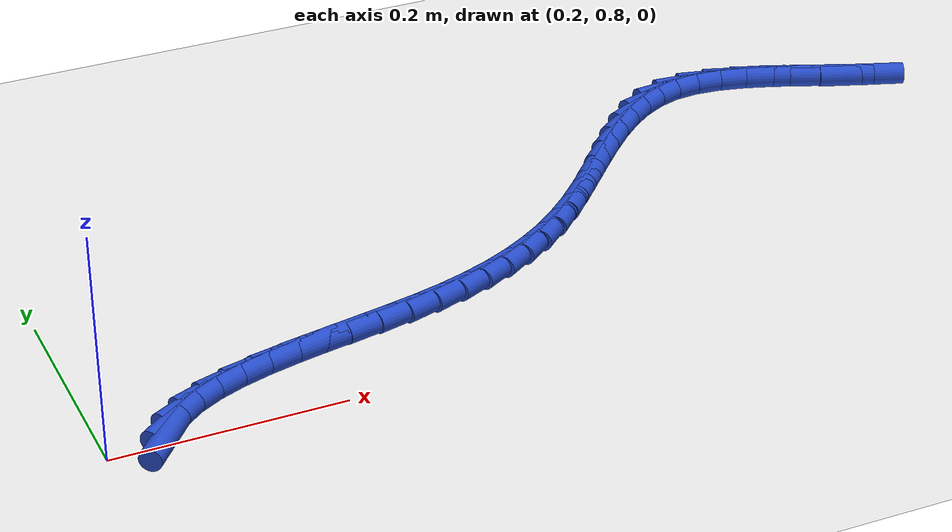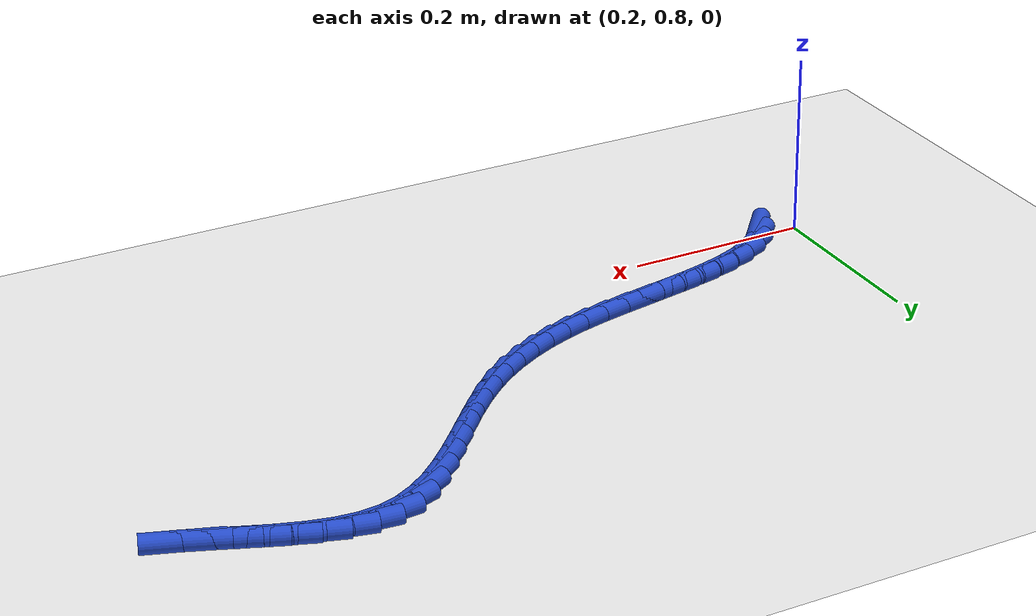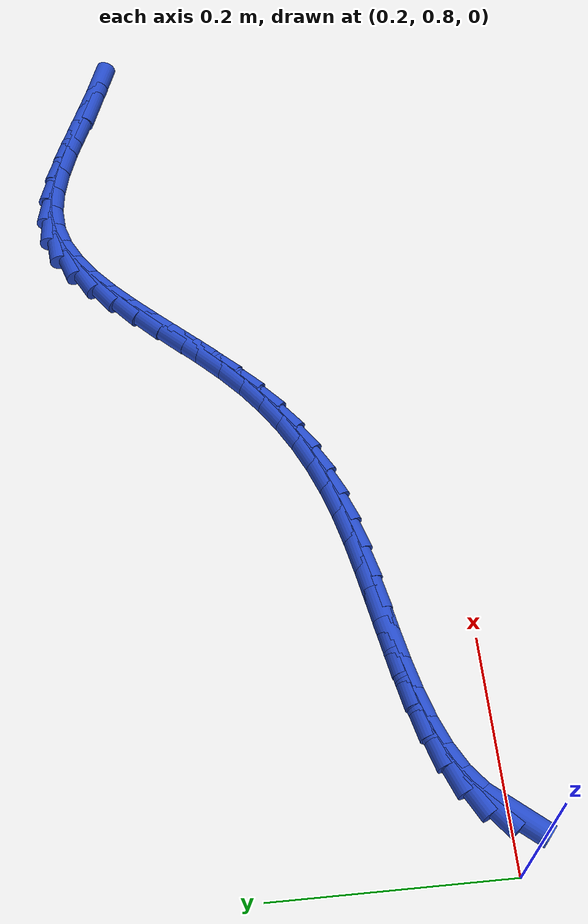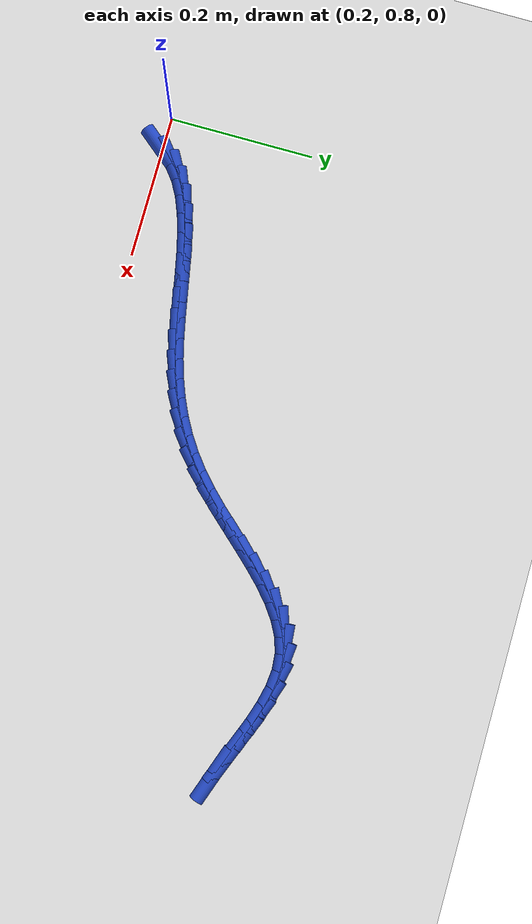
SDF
<sdf version="1.6">
 <world name="default">
  <model name="ground_plane">
   <static>1</static>
   <link name="link">
    <collision name="collision">
     <geometry><plane><normal>0 0 1</normal><size>100 100</size></plane></geometry>
     <surface><friction><ode><mu>100</mu><mu2>50</mu2></ode></friction></surface>
    </collision>
    <visual name="visual">
     <cast_shadows>0</cast_shadows>
     <geometry><plane><normal>0 0 1</normal><size>100 100</size></plane></geometry>
     <material>
      <script><uri>file://media/materials/scripts/gazebo.material</uri><name>Gazebo/WhiteGlow</name></script>
     </material>
    </visual>
   </link>
  </model>
  <model name="line">
   <link name="link_33">
    <pose>0.25196039313843843 0.8035025641075734 0.01 0 1.57 0.8814031383299049</pose>
    <collision name="collision">
     <geometry><cylinder><radius>0.01</radius><length>0.08</length></cylinder></geometry>
    </collision>
    <visual name="visual">
     <material>
      <script><name>Gazebo/Blue</name><uri>file://media/materials/scripts/gazebo.material</uri></script>
     </material>
     <geometry><cylinder><radius>0.01</radius><length>0.08</length></cylinder></geometry>
    </visual>
   </link>
   <link name="link_34">
    <pose>0.2656116137168598 0.8200632192654634 0.01 0 1.57 0.6683258235549239</pose>
    <collision name="collision">
     <geometry><cylinder><radius>0.01</radius><length>0.08</length></cylinder></geometry>
    </collision>
    <visual name="visual">
     <material>
      <script><name>Gazebo/Blue</name><uri>file://media/materials/scripts/gazebo.material</uri></script>
     </material>
     <geometry><cylinder><radius>0.01</radius><length>0.08</length></cylinder></geometry>
    </visual>
   </link>
   <link name="link_35">
    <pose>0.2830352882135735 0.8338197814384 0.01 0 1.57 0.5024953430491619</pose>
    <collision name="collision">
     <geometry><cylinder><radius>0.01</radius><length>0.08</length></cylinder></geometry>
    </collision>
    <visual name="visual">
     <material>
      <script><name>Gazebo/Blue</name><uri>file://media/materials/scripts/gazebo.material</uri></script>
     </material>
     <geometry><cylinder><radius>0.01</radius><length>0.08</length></cylinder></geometry>
    </visual>
   </link>
   <link name="link_36">
    <pose>0.30370620266704607 0.8451794202308732 0.01 0 1.57 0.38110081155639564</pose>
    <collision name="collision">
     <geometry><cylinder><radius>0.01</radius><length>0.08</length></cylinder></geometry>
    </collision>
    <visual name="visual">
     <material>
      <script><name>Gazebo/Blue</name><uri>file://media/materials/scripts/gazebo.material</uri></script>
     </material>
     <geometry><cylinder><radius>0.01</radius><length>0.08</length></cylinder></geometry>
    </visual>
   </link>
   <link name="link_37">
    <pose>0.3270960411494506 0.8545514877832754 0.01 0 1.57 0.29574475086381513</pose>
    <collision name="collision">
     <geometry><cylinder><radius>0.01</radius><length>0.08</length></cylinder></geometry>
    </collision>
    <visual name="visual">
     <material>
      <script><name>Gazebo/Blue</name><uri>file://media/materials/scripts/gazebo.material</uri></script>
     </material>
     <geometry><cylinder><radius>0.01</radius><length>0.08</length></cylinder></geometry>
    </visual>
   </link>
   <link name="link_38">
    <pose>0.3526764877329599 0.8623453362359983 0.01 0 1.57 0.2385528095769914</pose>
    <collision name="collision">
     <geometry><cylinder><radius>0.01</radius><length>0.08</length></cylinder></geometry>
    </collision>
    <visual name="visual">
     <material>
      <script><name>Gazebo/Blue</name><uri>file://media/materials/scripts/gazebo.material</uri></script>
     </material>
     <geometry><cylinder><radius>0.01</radius><length>0.08</length></cylinder></geometry>
    </visual>
   </link>
   <link name="link_39">
    <pose>0.37991922648974713 0.868970317729434 0.01 0 1.57 0.2038294780840506</pose>
    <collision name="collision">
     <geometry><cylinder><radius>0.01</radius><length>0.08</length></cylinder></geometry>
    </collision>
    <visual name="visual">
     <material>
      <script><name>Gazebo/Blue</name><uri>file://media/materials/scripts/gazebo.material</uri></script>
     </material>
     <geometry><cylinder><radius>0.01</radius><length>0.08</length></cylinder></geometry>
    </visual>
   </link>
   <link name="link_40">
    <pose>0.4082959414919849 0.8748357844039745 0.01 0 1.57 0.18805007849693478</pose>
    <collision name="collision">
     <geometry><cylinder><radius>0.01</radius><length>0.08</length></cylinder></geometry>
    </collision>
    <visual name="visual">
     <material>
      <script><name>Gazebo/Blue</name><uri>file://media/materials/scripts/gazebo.material</uri></script>
     </material>
     <geometry><cylinder><radius>0.01</radius><length>0.08</length></cylinder></geometry>
    </visual>
   </link>
   <link name="link_41">
    <pose>0.4372783168118466 0.8803510884000115 0.01 0 1.57 0.18952650978616276</pose>
    <collision name="collision">
     <geometry><cylinder><radius>0.01</radius><length>0.08</length></cylinder></geometry>
    </collision>
    <visual name="visual">
     <material>
      <script><name>Gazebo/Blue</name><uri>file://media/materials/scripts/gazebo.material</uri></script>
     </material>
     <geometry><cylinder><radius>0.01</radius><length>0.08</length></cylinder></geometry>
    </visual>
   </link>
   <link name="link_42">
    <pose>0.4663380365215052 0.8859255818579378 0.01 0 1.57 0.20817025769582292</pose>
    <collision name="collision">
     <geometry><cylinder><radius>0.01</radius><length>0.08</length></cylinder></geometry>
    </collision>
    <visual name="visual">
     <material>
      <script><name>Gazebo/Blue</name><uri>file://media/materials/scripts/gazebo.material</uri></script>
     </material>
     <geometry><cylinder><radius>0.01</radius><length>0.08</length></cylinder></geometry>
    </visual>
   </link>
   <link name="link_43">
    <pose>0.49494678469313347 0.8919686169181444 0.01 0 1.57 0.24544051459341526</pose>
    <collision name="collision">
     <geometry><cylinder><radius>0.01</radius><length>0.08</length></cylinder></geometry>
    </collision>
    <visual name="visual">
     <material>
      <script><name>Gazebo/Blue</name><uri>file://media/materials/scripts/gazebo.material</uri></script>
     </material>
     <geometry><cylinder><radius>0.01</radius><length>0.08</length></cylinder></geometry>
    </visual>
   </link>
   <link name="link_44">
    <pose>0.5225762509966341 0.8988895433145175 0.01 0 1.57 0.30126496781764067</pose>
    <collision name="collision">
     <geometry><cylinder><radius>0.01</radius><length>0.08</length></cylinder></geometry>
    </collision>
    <visual name="visual">
     <material>
      <script><name>Gazebo/Blue</name><uri>file://media/materials/scripts/gazebo.material</uri></script>
     </material>
     <geometry><cylinder><radius>0.01</radius><length>0.08</length></cylinder></geometry>
    </visual>
   </link>
   <link name="link_45">
    <pose>0.5488216759274406 0.9070445953444581 0.01 0 1.57 0.36642740367754484</pose>
    <collision name="collision">
     <geometry><cylinder><radius>0.01</radius><length>0.08</length></cylinder></geometry>
    </collision>
    <visual name="visual">
     <material>
      <script><name>Gazebo/Blue</name><uri>file://media/materials/scripts/gazebo.material</uri></script>
     </material>
     <geometry><cylinder><radius>0.01</radius><length>0.08</length></cylinder></geometry>
    </visual>
   </link>
   <link name="link_46">
    <pose>0.5737207020875215 0.916599815286096 0.01 0 1.57 0.4374550515494316</pose>
    <collision name="collision">
     <geometry><cylinder><radius>0.01</radius><length>0.08</length></cylinder></geometry>
    </collision>
    <visual name="visual">
     <material>
      <script><name>Gazebo/Blue</name><uri>file://media/materials/scripts/gazebo.material</uri></script>
     </material>
     <geometry><cylinder><radius>0.01</radius><length>0.08</length></cylinder></geometry>
    </visual>
   </link>
   <link name="link_47">
    <pose>0.5974099544098117 0.9276786921631349 0.01 0 1.57 0.5125394096000014</pose>
    <collision name="collision">
     <geometry><cylinder><radius>0.01</radius><length>0.08</length></cylinder></geometry>
    </collision>
    <visual name="visual">
     <material>
      <script><name>Gazebo/Blue</name><uri>file://media/materials/scripts/gazebo.material</uri></script>
     </material>
     <geometry><cylinder><radius>0.01</radius><length>0.08</length></cylinder></geometry>
    </visual>
   </link>
   <link name="link_48">
    <pose>0.6200260578272451 0.9404047149992777 0.01 0 1.57 0.589393772578855</pose>
    <collision name="collision">
     <geometry><cylinder><radius>0.01</radius><length>0.08</length></cylinder></geometry>
    </collision>
    <visual name="visual">
     <material>
      <script><name>Gazebo/Blue</name><uri>file://media/materials/scripts/gazebo.material</uri></script>
     </material>
     <geometry><cylinder><radius>0.01</radius><length>0.08</length></cylinder></geometry>
    </visual>
   </link>
   <link name="link_49">
    <pose>0.6417056372727566 0.9549013728182282 0.01 0 1.57 0.6655343394546928</pose>
    <collision name="collision">
     <geometry><cylinder><radius>0.01</radius><length>0.08</length></cylinder></geometry>
    </collision>
    <visual name="visual">
     <material>
      <script><name>Gazebo/Blue</name><uri>file://media/materials/scripts/gazebo.material</uri></script>
     </material>
     <geometry><cylinder><radius>0.01</radius><length>0.08</length></cylinder></geometry>
    </visual>
   </link>
   <link name="link_50">
    <pose>0.66258531767928 0.9712921546436889 0.01 0 1.57 0.738272810275782</pose>
    <collision name="collision">
     <geometry><cylinder><radius>0.01</radius><length>0.08</length></cylinder></geometry>
    </collision>
    <visual name="visual">
     <material>
      <script><name>Gazebo/Blue</name><uri>file://media/materials/scripts/gazebo.material</uri></script>
     </material>
     <geometry><cylinder><radius>0.01</radius><length>0.08</length></cylinder></geometry>
    </visual>
   </link>
   <link name="link_51">
    <pose>0.6828022919840575 0.989688131755414 0.01 0 1.57 0.795839715297439</pose>
    <collision name="collision">
     <geometry><cylinder><radius>0.01</radius><length>0.08</length></cylinder></geometry>
    </collision>
    <visual name="visual">
     <material>
      <script><name>Gazebo/Blue</name><uri>file://media/materials/scripts/gazebo.material</uri></script>
     </material>
     <geometry><cylinder><radius>0.01</radius><length>0.08</length></cylinder></geometry>
    </visual>
   </link>
   <link name="link_52">
    <pose>0.702511460875961 1.00981324751435 0.01 0 1.57 0.8285183529158602</pose>
    <collision name="collision">
     <geometry><cylinder><radius>0.01</radius><length>0.08</length></cylinder></geometry>
    </collision>
    <visual name="visual">
     <material>
      <script><name>Gazebo/Blue</name><uri>file://media/materials/scripts/gazebo.material</uri></script>
     </material>
     <geometry><cylinder><radius>0.01</radius><length>0.08</length></cylinder></geometry>
    </visual>
   </link>
   <link name="link_53">
    <pose>0.7218884762774764 1.03093778057853 0.01 0 1.57 0.8382363117363955</pose>
    <collision name="collision">
     <geometry><cylinder><radius>0.01</radius><length>0.08</length></cylinder></geometry>
    </collision>
    <visual name="visual">
     <material>
      <script><name>Gazebo/Blue</name><uri>file://media/materials/scripts/gazebo.material</uri></script>
     </material>
     <geometry><cylinder><radius>0.01</radius><length>0.08</length></cylinder></geometry>
    </visual>
   </link>
   <link name="link_54">
    <pose>0.7411101716157126 1.0523061794816884 0.01 0 1.57 0.8256135696002049</pose>
    <collision name="collision">
     <geometry><cylinder><radius>0.01</radius><length>0.08</length></cylinder></geometry>
    </collision>
    <visual name="visual">
     <material>
      <script><name>Gazebo/Blue</name><uri>file://media/materials/scripts/gazebo.material</uri></script>
     </material>
     <geometry><cylinder><radius>0.01</radius><length>0.08</length></cylinder></geometry>
    </visual>
   </link>
   <link name="link_55">
    <pose>0.7603533803177783 1.0731628927575592 0.01 0 1.57 0.7891879679398328</pose>
    <collision name="collision">
     <geometry><cylinder><radius>0.01</radius><length>0.08</length></cylinder></geometry>
    </collision>
    <visual name="visual">
     <material>
      <script><name>Gazebo/Blue</name><uri>file://media/materials/scripts/gazebo.material</uri></script>
     </material>
     <geometry><cylinder><radius>0.01</radius><length>0.08</length></cylinder></geometry>
    </visual>
   </link>
   <link name="link_56">
    <pose>0.7797949358107827 1.0927523689398775 0.01 0 1.57 0.7252822954863996</pose>
    <collision name="collision">
     <geometry><cylinder><radius>0.01</radius><length>0.08</length></cylinder></geometry>
    </collision>
    <visual name="visual">
     <material>
      <script><name>Gazebo/Blue</name><uri>file://media/materials/scripts/gazebo.material</uri></script>
     </material>
     <geometry><cylinder><radius>0.01</radius><length>0.08</length></cylinder></geometry>
    </visual>
   </link>
   <link name="link_57">
    <pose>0.7996116715218343 1.1103190565623773 0.01 0 1.57 0.6279837827026062</pose>
    <collision name="collision">
     <geometry><cylinder><radius>0.01</radius><length>0.08</length></cylinder></geometry>
    </collision>
    <visual name="visual">
     <material>
      <script><name>Gazebo/Blue</name><uri>file://media/materials/scripts/gazebo.material</uri></script>
     </material>
     <geometry><cylinder><radius>0.01</radius><length>0.08</length></cylinder></geometry>
    </visual>
   </link>
   <link name="link_58">
    <pose>0.8199804208780425 1.1251074041587927 0.01 0 1.57 0.4900460597568495</pose>
    <collision name="collision">
     <geometry><cylinder><radius>0.01</radius><length>0.08</length></cylinder></geometry>
    </collision>
    <visual name="visual">
     <material>
      <script><name>Gazebo/Blue</name><uri>file://media/materials/scripts/gazebo.material</uri></script>
     </material>
     <geometry><cylinder><radius>0.01</radius><length>0.08</length></cylinder></geometry>
    </visual>
   </link>
   <link name="link_59">
    <pose>0.8410780173065158 1.1363618602628585 0.01 0 1.57 0.3065651528894308</pose>
    <collision name="collision">
     <geometry><cylinder><radius>0.01</radius><length>0.08</length></cylinder></geometry>
    </collision>
    <visual name="visual">
     <material>
      <script><name>Gazebo/Blue</name><uri>file://media/materials/scripts/gazebo.material</uri></script>
     </material>
     <geometry><cylinder><radius>0.01</radius><length>0.08</length></cylinder></geometry>
    </visual>
   </link>
   <link name="link_60">
    <pose>0.8630812942343626 1.1433268734083086 0.01 0 1.57 0.09086140304876274</pose>
    <collision name="collision">
     <geometry><cylinder><radius>0.01</radius><length>0.08</length></cylinder></geometry>
    </collision>
    <visual name="visual">
     <material>
      <script><name>Gazebo/Blue</name><uri>file://media/materials/scripts/gazebo.material</uri></script>
     </material>
     <geometry><cylinder><radius>0.01</radius><length>0.08</length></cylinder></geometry>
    </visual>
   </link>
   <link name="link_61">
    <pose>0.8861306450218375 1.1454269522166274 0.01 0 1.57 -0.09375971632706391</pose>
    <collision name="collision">
     <geometry><cylinder><radius>0.01</radius><length>0.08</length></cylinder></geometry>
    </collision>
    <visual name="visual">
     <material>
      <script><name>Gazebo/Blue</name><uri>file://media/materials/scripts/gazebo.material</uri></script>
     </material>
     <geometry><cylinder><radius>0.01</radius><length>0.08</length></cylinder></geometry>
    </visual>
   </link>
   <link name="link_62">
    <pose>0.9101475088881974 1.1431685161081426 0.01 0 1.57 -0.22601905792737412</pose>
    <collision name="collision">
     <geometry><cylinder><radius>0.01</radius><length>0.08</length></cylinder></geometry>
    </collision>
    <visual name="visual">
     <material>
      <script><name>Gazebo/Blue</name><uri>file://media/materials/scripts/gazebo.material</uri></script>
     </material>
     <geometry><cylinder><radius>0.01</radius><length>0.08</length></cylinder></geometry>
    </visual>
   </link>
   <link name="link_63">
    <pose>0.9349719279952751 1.1374601890699565 0.01 0 1.57 -0.3131862320692095</pose>
    <collision name="collision">
     <geometry><cylinder><radius>0.01</radius><length>0.08</length></cylinder></geometry>
    </collision>
    <visual name="visual">
     <material>
      <script><name>Gazebo/Blue</name><uri>file://media/materials/scripts/gazebo.material</uri></script>
     </material>
     <geometry><cylinder><radius>0.01</radius><length>0.08</length></cylinder></geometry>
    </visual>
   </link>
   <link name="link_64">
    <pose>0.9604438086678797 1.12921126629612 0.01 0 1.57 -0.36367568333197986</pose>
    <collision name="collision">
     <geometry><cylinder><radius>0.01</radius><length>0.08</length></cylinder></geometry>
    </collision>
    <visual name="visual">
     <material>
      <script><name>Gazebo/Blue</name><uri>file://media/materials/scripts/gazebo.material</uri></script>
     </material>
     <geometry><cylinder><radius>0.01</radius><length>0.08</length></cylinder></geometry>
    </visual>
   </link>
   <link name="link_65">
    <pose>0.9864030572308216 1.119331042980685 0.01 0 1.57 -0.38337656161099104</pose>
    <collision name="collision">
     <geometry><cylinder><radius>0.01</radius><length>0.08</length></cylinder></geometry>
    </collision>
    <visual name="visual">
     <material>
      <script><name>Gazebo/Blue</name><uri>file://media/materials/scripts/gazebo.material</uri></script>
     </material>
     <geometry><cylinder><radius>0.01</radius><length>0.08</length></cylinder></geometry>
    </visual>
   </link>
   <link name="link_66">
    <pose>1.0126895800089102 1.1087288143177032 0.01 0 1.57 -0.3750673628982152</pose>
    <collision name="collision">
     <geometry><cylinder><radius>0.01</radius><length>0.08</length></cylinder></geometry>
    </collision>
    <visual name="visual">
     <material>
      <script><name>Gazebo/Blue</name><uri>file://media/materials/scripts/gazebo.material</uri></script>
     </material>
     <geometry><cylinder><radius>0.01</radius><length>0.08</length></cylinder></geometry>
    </visual>
   </link>
   <link name="link_67">
    <pose>1.0391432833269554 1.0983138755012258 0.01 0 1.57 -0.33860093862001595</pose>
    <collision name="collision">
     <geometry><cylinder><radius>0.01</radius><length>0.08</length></cylinder></geometry>
    </collision>
    <visual name="visual">
     <material>
      <script><name>Gazebo/Blue</name><uri>file://media/materials/scripts/gazebo.material</uri></script>
     </material>
     <geometry><cylinder><radius>0.01</radius><length>0.08</length></cylinder></geometry>
    </visual>
   </link>
  </model>
 </world>
</sdf>
